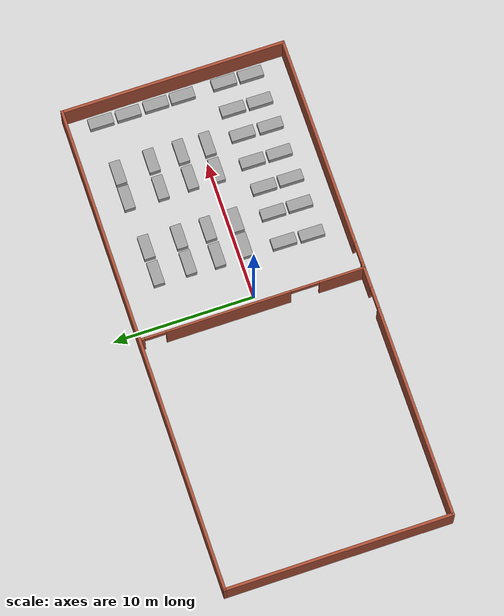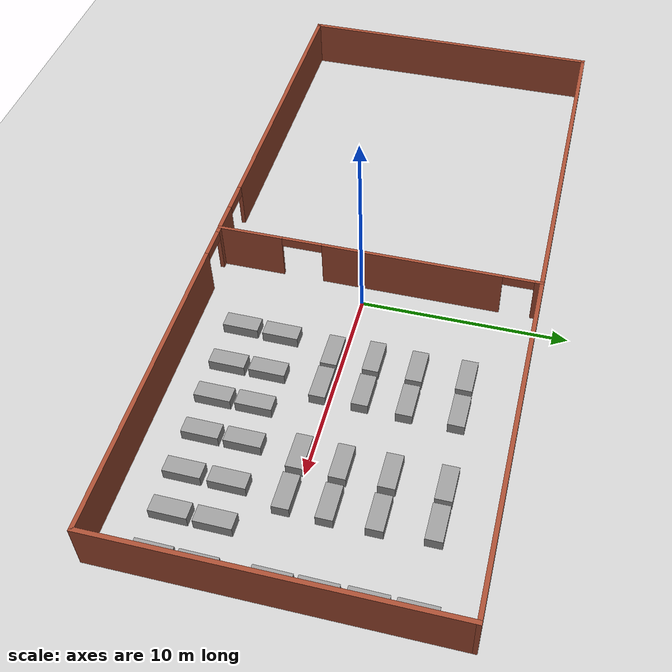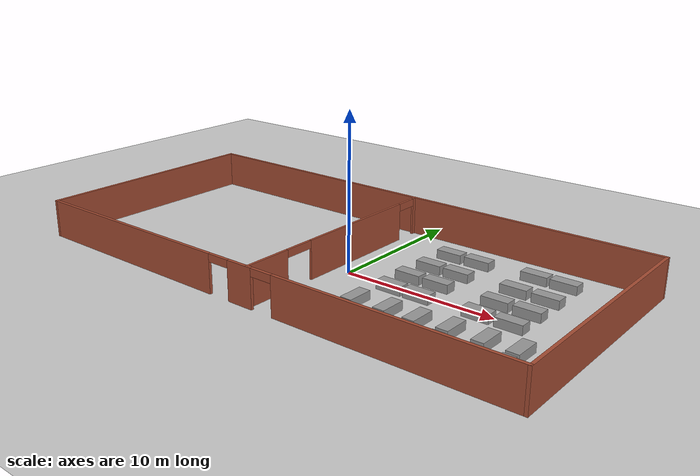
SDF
<sdf version="1.7">
 <world name="default">
  <model name="ground_plane">
   <static>1</static>
   <link name="link">
    <collision name="collision">
     <geometry><plane><normal>0 0 1</normal><size>100 100</size></plane></geometry>
     <surface><friction><ode><mu>100</mu><mu2>50</mu2></ode></friction></surface>
    </collision>
    <visual name="visual">
     <cast_shadows>0</cast_shadows>
     <geometry><plane><normal>0 0 1</normal><size>100 100</size></plane></geometry>
     <material>
      <script><uri>file://media/materials/scripts/gazebo.material</uri><name>Gazebo/Grey</name></script>
     </material>
    </visual>
   </link>
  </model>
  <model name="warehouse">
   <pose>-1.53718 0.469 0 0 -0 0</pose>
   <link name="Wall_2">
    <collision name="Wall_2_Collision">
     <geometry><box><size>35.0504 0.2 2.5</size></box></geometry>
     <pose>0 0 1.25 0 -0 0</pose>
    </collision>
    <visual name="Wall_2_Visual">
     <pose>0 0 1.25 0 -0 0</pose>
     <geometry><box><size>35.0504 0.2 2.5</size></box></geometry>
     <material>
      <script><uri>file://media/materials/scripts/gazebo.material</uri><name>Gazebo/Bricks</name></script>
      <ambient>1 1 1 1</ambient>
     </material>
     <meta><layer>0</layer></meta>
    </visual>
    <pose>1e-06 7.925 0 0 -0 0</pose>
   </link>
   <link name="Wall_3">
    <collision name="Wall_3_Collision">
     <geometry><box><size>16.0502 0.2 2.5</size></box></geometry>
     <pose>0 0 1.25 0 -0 0</pose>
    </collision>
    <visual name="Wall_3_Visual">
     <pose>0 0 1.25 0 -0 0</pose>
     <geometry><box><size>16.0502 0.2 2.5</size></box></geometry>
     <material>
      <script><uri>file://media/materials/scripts/gazebo.material</uri><name>Gazebo/Bricks</name></script>
      <ambient>1 1 1 1</ambient>
     </material>
     <meta><layer>0</layer></meta>
    </visual>
    <pose>17.425 0 0 0 -0 -1.5708</pose>
   </link>
   <link name="Wall_4">
    <pose>1e-06 -7.925 0 0 -0 3.14159</pose>
    <visual name="Wall_4_Visual_0">
     <pose>-9.91729 0 1.25 0 -0 0</pose>
     <geometry><box><size>15.215 0.2 2.5</size></box></geometry>
     <material>
      <script><uri>file://media/materials/scripts/gazebo.material</uri><name>Gazebo/Bricks</name></script>
      <ambient>1 1 1 1</ambient>
     </material>
     <meta><layer>0</layer></meta>
    </visual>
    <collision name="Wall_4_Collision_0">
     <geometry><box><size>15.215 0.2 2.5</size></box></geometry>
     <pose>-9.91729 0 1.25 0 -0 0</pose>
    </collision>
    <visual name="Wall_4_Visual_1">
     <pose>0.093025 0 1.25 0 -0 0</pose>
     <geometry><box><size>1.80562 0.2 2.5</size></box></geometry>
     <material>
      <script><uri>file://media/materials/scripts/gazebo.material</uri><name>Gazebo/Bricks</name></script>
      <ambient>1 1 1 1</ambient>
     </material>
     <meta><layer>0</layer></meta>
    </visual>
    <collision name="Wall_4_Collision_1">
     <geometry><box><size>1.80562 0.2 2.5</size></box></geometry>
     <pose>0.093025 0 1.25 0 -0 0</pose>
    </collision>
    <visual name="Wall_4_Visual_2">
     <pose>10.0103 0 1.25 0 -0 0</pose>
     <geometry><box><size>15.029 0.2 2.5</size></box></geometry>
     <material>
      <script><uri>file://media/materials/scripts/gazebo.material</uri><name>Gazebo/Bricks</name></script>
      <ambient>1 1 1 1</ambient>
     </material>
     <meta><layer>0</layer></meta>
    </visual>
    <collision name="Wall_4_Collision_2">
     <geometry><box><size>15.029 0.2 2.5</size></box></geometry>
     <pose>10.0103 0 1.25 0 -0 0</pose>
    </collision>
    <visual name="Wall_4_Visual_3">
     <pose>-1.55979 0 2.25 0 -0 0</pose>
     <geometry><box><size>1.5 0.2 0.5</size></box></geometry>
     <material>
      <script><uri>file://media/materials/scripts/gazebo.material</uri><name>Gazebo/Bricks</name></script>
      <ambient>1 1 1 1</ambient>
     </material>
     <meta><layer>0</layer></meta>
    </visual>
    <collision name="Wall_4_Collision_3">
     <geometry><box><size>1.5 0.2 0.5</size></box></geometry>
     <pose>-1.55979 0 2.25 0 -0 0</pose>
    </collision>
    <visual name="Wall_4_Visual_4">
     <pose>1.74584 0 2.25 0 -0 0</pose>
     <geometry><box><size>1.5 0.2 0.5</size></box></geometry>
     <material>
      <script><uri>file://media/materials/scripts/gazebo.material</uri><name>Gazebo/Bricks</name></script>
      <ambient>1 1 1 1</ambient>
     </material>
     <meta><layer>0</layer></meta>
    </visual>
    <collision name="Wall_4_Collision_4">
     <geometry><box><size>1.5 0.2 0.5</size></box></geometry>
     <pose>1.74584 0 2.25 0 -0 0</pose>
    </collision>
   </link>
   <link name="Wall_5">
    <collision name="Wall_5_Collision">
     <geometry><box><size>16.05 0.2 2.5</size></box></geometry>
     <pose>0 0 1.25 0 -0 0</pose>
    </collision>
    <visual name="Wall_5_Visual">
     <pose>0 0 1.25 0 -0 0</pose>
     <geometry><box><size>16.05 0.2 2.5</size></box></geometry>
     <material>
      <script><uri>file://media/materials/scripts/gazebo.material</uri><name>Gazebo/Bricks</name></script>
      <ambient>1 1 1 1</ambient>
     </material>
     <meta><layer>0</layer></meta>
    </visual>
    <pose>-17.425 0 0 0 -0 1.5708</pose>
   </link>
   <link name="Wall_8">
    <pose>0.464252 -0.022121 0 0 -0 -1.5708</pose>
    <visual name="Wall_8_Visual_0">
     <pose>-7.80252 0 1.25 0 -0 0</pose>
     <geometry><box><size>0.394954 0.15 2.5</size></box></geometry>
     <material>
      <script><uri>file://media/materials/scripts/gazebo.material</uri><name>Gazebo/Bricks</name></script>
      <ambient>1 1 1 1</ambient>
     </material>
     <meta><layer>0</layer></meta>
    </visual>
    <collision name="Wall_8_Collision_0">
     <geometry><box><size>0.394954 0.15 2.5</size></box></geometry>
     <pose>-7.80252 0 1.25 0 -0 0</pose>
    </collision>
    <visual name="Wall_8_Visual_1">
     <pose>-1.69513 0 1.25 0 -0 0</pose>
     <geometry><box><size>8.81983 0.15 2.5</size></box></geometry>
     <material>
      <script><uri>file://media/materials/scripts/gazebo.material</uri><name>Gazebo/Bricks</name></script>
      <ambient>1 1 1 1</ambient>
     </material>
     <meta><layer>0</layer></meta>
    </visual>
    <collision name="Wall_8_Collision_1">
     <geometry><box><size>8.81983 0.15 2.5</size></box></geometry>
     <pose>-1.69513 0 1.25 0 -0 0</pose>
    </collision>
    <visual name="Wall_8_Visual_2">
     <pose>6.35739 0 1.25 0 -0 0</pose>
     <geometry><box><size>3.28522 0.15 2.5</size></box></geometry>
     <material>
      <script><uri>file://media/materials/scripts/gazebo.material</uri><name>Gazebo/Bricks</name></script>
      <ambient>1 1 1 1</ambient>
     </material>
     <meta><layer>0</layer></meta>
    </visual>
    <collision name="Wall_8_Collision_2">
     <geometry><box><size>3.28522 0.15 2.5</size></box></geometry>
     <pose>6.35739 0 1.25 0 -0 0</pose>
    </collision>
    <visual name="Wall_8_Visual_3">
     <pose>-6.85505 0 2.25 0 -0 0</pose>
     <geometry><box><size>1.5 0.15 0.5</size></box></geometry>
     <material>
      <script><uri>file://media/materials/scripts/gazebo.material</uri><name>Gazebo/Bricks</name></script>
      <ambient>1 1 1 1</ambient>
     </material>
     <meta><layer>0</layer></meta>
    </visual>
    <collision name="Wall_8_Collision_3">
     <geometry><box><size>1.5 0.15 0.5</size></box></geometry>
     <pose>-6.85505 0 2.25 0 -0 0</pose>
    </collision>
    <visual name="Wall_8_Visual_4">
     <pose>3.71478 0 2.25 0 -0 0</pose>
     <geometry><box><size>2 0.15 0.5</size></box></geometry>
     <material>
      <script><uri>file://media/materials/scripts/gazebo.material</uri><name>Gazebo/Bricks</name></script>
      <ambient>1 1 1 1</ambient>
     </material>
     <meta><layer>0</layer></meta>
    </visual>
    <collision name="Wall_8_Collision_4">
     <geometry><box><size>2 0.15 0.5</size></box></geometry>
     <pose>3.71478 0 2.25 0 -0 0</pose>
    </collision>
   </link>
   <static>1</static>
  </model>
  <model name="unit_box_clone">
   <pose>15.1066 2.02055 0.285053 0 0 -0.009404</pose>
   <link name="link">
    <inertial>
     <mass>1</mass>
     <inertia>
      <ixx>0.166667</ixx>
      <ixy>0</ixy>
      <ixz>0</ixz>
      <iyy>0.166667</iyy>
      <iyz>0</iyz>
      <izz>0.166667</izz>
     </inertia>
    </inertial>
    <collision name="collision"><geometry><box><size>0.769556 1.70794 0.570107</size></box></geometry></collision>
    <visual name="visual">
     <geometry><box><size>0.769556 1.70794 0.570107</size></box></geometry>
     <material>
      <script><name>Gazebo/Grey</name><uri>file://media/materials/scripts/gazebo.material</uri></script>
     </material>
    </visual>
   </link>
  </model>
  <model name="unit_box_clone_0">
   <pose>15.0845 4.02392 0.285053 0 0 -0.009404</pose>
   <link name="link">
    <inertial>
     <mass>1</mass>
     <inertia>
      <ixx>0.166667</ixx>
      <ixy>0</ixy>
      <ixz>0</ixz>
      <iyy>0.166667</iyy>
      <iyz>0</iyz>
      <izz>0.166667</izz>
     </inertia>
    </inertial>
    <collision name="collision"><geometry><box><size>0.769556 1.70794 0.570107</size></box></geometry></collision>
    <visual name="visual">
     <geometry><box><size>0.769556 1.70794 0.570107</size></box></geometry>
     <material>
      <script><name>Gazebo/Grey</name><uri>file://media/materials/scripts/gazebo.material</uri></script>
     </material>
    </visual>
   </link>
  </model>
  <model name="unit_box_clone_1">
   <pose>15.0982 5.98316 0.285053 0 0 -0.009404</pose>
   <link name="link">
    <inertial>
     <mass>1</mass>
     <inertia>
      <ixx>0.166667</ixx>
      <ixy>0</ixy>
      <ixz>0</ixz>
      <iyy>0.166667</iyy>
      <iyz>0</iyz>
      <izz>0.166667</izz>
     </inertia>
    </inertial>
    <collision name="collision"><geometry><box><size>0.769556 1.70794 0.570107</size></box></geometry></collision>
    <visual name="visual">
     <geometry><box><size>0.769556 1.70794 0.570107</size></box></geometry>
     <material>
      <script><name>Gazebo/Grey</name><uri>file://media/materials/scripts/gazebo.material</uri></script>
     </material>
    </visual>
   </link>
  </model>
  <model name="unit_box_clone_2">
   <pose>15.1423 -2.91411 0.285053 0 0 -0.009404</pose>
   <link name="link">
    <inertial>
     <mass>1</mass>
     <inertia>
      <ixx>0.166667</ixx>
      <ixy>0</ixy>
      <ixz>0</ixz>
      <iyy>0.166667</iyy>
      <iyz>0</iyz>
      <izz>0.166667</izz>
     </inertia>
    </inertial>
    <collision name="collision"><geometry><box><size>0.769556 1.70794 0.570107</size></box></geometry></collision>
    <visual name="visual">
     <geometry><box><size>0.769556 1.70794 0.570107</size></box></geometry>
     <material>
      <script><name>Gazebo/Grey</name><uri>file://media/materials/scripts/gazebo.material</uri></script>
     </material>
    </visual>
   </link>
  </model>
  <model name="unit_box_clone_3">
   <pose>15.1121 -4.83538 0.285053 0 0 -0.009404</pose>
   <link name="link">
    <inertial>
     <mass>1</mass>
     <inertia>
      <ixx>0.166667</ixx>
      <ixy>0</ixy>
      <ixz>0</ixz>
      <iyy>0.166667</iyy>
      <iyz>0</iyz>
      <izz>0.166667</izz>
     </inertia>
    </inertial>
    <collision name="collision"><geometry><box><size>0.769556 1.70794 0.570107</size></box></geometry></collision>
    <visual name="visual">
     <geometry><box><size>0.769556 1.70794 0.570107</size></box></geometry>
     <material>
      <script><name>Gazebo/Grey</name><uri>file://media/materials/scripts/gazebo.material</uri></script>
     </material>
    </visual>
   </link>
  </model>
  <model name="unit_box_clone_4">
   <pose>13.0976 -2.86267 0.285053 0 0 -0.009404</pose>
   <link name="link">
    <inertial>
     <mass>1</mass>
     <inertia>
      <ixx>0.166667</ixx>
      <ixy>0</ixy>
      <ixz>0</ixz>
      <iyy>0.166667</iyy>
      <iyz>0</iyz>
      <izz>0.166667</izz>
     </inertia>
    </inertial>
    <collision name="collision"><geometry><box><size>0.769556 1.70794 0.570107</size></box></geometry></collision>
    <visual name="visual">
     <geometry><box><size>0.769556 1.70794 0.570107</size></box></geometry>
     <material>
      <script><name>Gazebo/Grey</name><uri>file://media/materials/scripts/gazebo.material</uri></script>
     </material>
    </visual>
   </link>
  </model>
  <model name="unit_box_clone_5">
   <pose>13.0739 -4.8115 0.285053 0 0 -0.009404</pose>
   <link name="link">
    <inertial>
     <mass>1</mass>
     <inertia>
      <ixx>0.166667</ixx>
      <ixy>0</ixy>
      <ixz>0</ixz>
      <iyy>0.166667</iyy>
      <iyz>0</iyz>
      <izz>0.166667</izz>
     </inertia>
    </inertial>
    <collision name="collision"><geometry><box><size>0.769556 1.70794 0.570107</size></box></geometry></collision>
    <visual name="visual">
     <geometry><box><size>0.769556 1.70794 0.570107</size></box></geometry>
     <material>
      <script><name>Gazebo/Grey</name><uri>file://media/materials/scripts/gazebo.material</uri></script>
     </material>
    </visual>
   </link>
  </model>
  <model name="unit_box_clone_6">
   <pose>11.1833 -2.92811 0.285053 0 0 -0.009404</pose>
   <link name="link">
    <inertial>
     <mass>1</mass>
     <inertia>
      <ixx>0.166667</ixx>
      <ixy>0</ixy>
      <ixz>0</ixz>
      <iyy>0.166667</iyy>
      <iyz>0</iyz>
      <izz>0.166667</izz>
     </inertia>
    </inertial>
    <collision name="collision"><geometry><box><size>0.769556 1.70794 0.570107</size></box></geometry></collision>
    <visual name="visual">
     <geometry><box><size>0.769556 1.70794 0.570107</size></box></geometry>
     <material>
      <script><name>Gazebo/Grey</name><uri>file://media/materials/scripts/gazebo.material</uri></script>
     </material>
    </visual>
   </link>
  </model>
  <model name="unit_box_clone_7">
   <pose>11.152 -4.94217 0.285053 0 0 -0.009404</pose>
   <link name="link">
    <inertial>
     <mass>1</mass>
     <inertia>
      <ixx>0.166667</ixx>
      <ixy>0</ixy>
      <ixz>0</ixz>
      <iyy>0.166667</iyy>
      <iyz>0</iyz>
      <izz>0.166667</izz>
     </inertia>
    </inertial>
    <collision name="collision"><geometry><box><size>0.769556 1.70794 0.570107</size></box></geometry></collision>
    <visual name="visual">
     <geometry><box><size>0.769556 1.70794 0.570107</size></box></geometry>
     <material>
      <script><name>Gazebo/Grey</name><uri>file://media/materials/scripts/gazebo.material</uri></script>
     </material>
    </visual>
   </link>
  </model>
  <model name="unit_box_clone_8">
   <pose>9.11454 -2.94436 0.285053 0 0 -0.009404</pose>
   <link name="link">
    <inertial>
     <mass>1</mass>
     <inertia>
      <ixx>0.166667</ixx>
      <ixy>0</ixy>
      <ixz>0</ixz>
      <iyy>0.166667</iyy>
      <iyz>0</iyz>
      <izz>0.166667</izz>
     </inertia>
    </inertial>
    <collision name="collision"><geometry><box><size>0.769556 1.70794 0.570107</size></box></geometry></collision>
    <visual name="visual">
     <geometry><box><size>0.769556 1.70794 0.570107</size></box></geometry>
     <material>
      <script><name>Gazebo/Grey</name><uri>file://media/materials/scripts/gazebo.material</uri></script>
     </material>
    </visual>
   </link>
  </model>
  <model name="unit_box_clone_9">
   <pose>9.09764 -4.88711 0.285053 0 0 -0.009404</pose>
   <link name="link">
    <inertial>
     <mass>1</mass>
     <inertia>
      <ixx>0.166667</ixx>
      <ixy>0</ixy>
      <ixz>0</ixz>
      <iyy>0.166667</iyy>
      <iyz>0</iyz>
      <izz>0.166667</izz>
     </inertia>
    </inertial>
    <collision name="collision"><geometry><box><size>0.769556 1.70794 0.570107</size></box></geometry></collision>
    <visual name="visual">
     <geometry><box><size>0.769556 1.70794 0.570107</size></box></geometry>
     <material>
      <script><name>Gazebo/Grey</name><uri>file://media/materials/scripts/gazebo.material</uri></script>
     </material>
    </visual>
   </link>
  </model>
  <model name="unit_box_clone_10">
   <pose>7.12497 -3.10123 0.285053 0 0 -0.009404</pose>
   <link name="link">
    <inertial>
     <mass>1</mass>
     <inertia>
      <ixx>0.166667</ixx>
      <ixy>0</ixy>
      <ixz>0</ixz>
      <iyy>0.166667</iyy>
      <iyz>0</iyz>
      <izz>0.166667</izz>
     </inertia>
    </inertial>
    <collision name="collision"><geometry><box><size>0.769556 1.70794 0.570107</size></box></geometry></collision>
    <visual name="visual">
     <geometry><box><size>0.769556 1.70794 0.570107</size></box></geometry>
     <material>
      <script><name>Gazebo/Grey</name><uri>file://media/materials/scripts/gazebo.material</uri></script>
     </material>
    </visual>
   </link>
  </model>
  <model name="unit_box_clone_11">
   <pose>7.11602 -5.02256 0.285053 0 0 -0.009404</pose>
   <link name="link">
    <inertial>
     <mass>1</mass>
     <inertia>
      <ixx>0.166667</ixx>
      <ixy>0</ixy>
      <ixz>0</ixz>
      <iyy>0.166667</iyy>
      <iyz>0</iyz>
      <izz>0.166667</izz>
     </inertia>
    </inertial>
    <collision name="collision"><geometry><box><size>0.769556 1.70794 0.570107</size></box></geometry></collision>
    <visual name="visual">
     <geometry><box><size>0.769556 1.70794 0.570107</size></box></geometry>
     <material>
      <script><name>Gazebo/Grey</name><uri>file://media/materials/scripts/gazebo.material</uri></script>
     </material>
    </visual>
   </link>
  </model>
  <model name="unit_box_clone_12">
   <pose>5.18945 -3.09346 0.285053 0 0 -0.009404</pose>
   <link name="link">
    <inertial>
     <mass>1</mass>
     <inertia>
      <ixx>0.166667</ixx>
      <ixy>0</ixy>
      <ixz>0</ixz>
      <iyy>0.166667</iyy>
      <iyz>0</iyz>
      <izz>0.166667</izz>
     </inertia>
    </inertial>
    <collision name="collision"><geometry><box><size>0.769556 1.70794 0.570107</size></box></geometry></collision>
    <visual name="visual">
     <geometry><box><size>0.769556 1.70794 0.570107</size></box></geometry>
     <material>
      <script><name>Gazebo/Grey</name><uri>file://media/materials/scripts/gazebo.material</uri></script>
     </material>
    </visual>
   </link>
  </model>
  <model name="unit_box_clone_13">
   <pose>5.17833 -5.01713 0.285053 0 0 -0.009404</pose>
   <link name="link">
    <inertial>
     <mass>1</mass>
     <inertia>
      <ixx>0.166667</ixx>
      <ixy>0</ixy>
      <ixz>0</ixz>
      <iyy>0.166667</iyy>
      <iyz>0</iyz>
      <izz>0.166667</izz>
     </inertia>
    </inertial>
    <collision name="collision"><geometry><box><size>0.769556 1.70794 0.570107</size></box></geometry></collision>
    <visual name="visual">
     <geometry><box><size>0.769556 1.70794 0.570107</size></box></geometry>
     <material>
      <script><name>Gazebo/Grey</name><uri>file://media/materials/scripts/gazebo.material</uri></script>
     </material>
    </visual>
   </link>
  </model>
  <model name="unit_box_clone_14">
   <pose>2.98849 -3.13568 0.285053 0 0 -0.009404</pose>
   <link name="link">
    <inertial>
     <mass>1</mass>
     <inertia>
      <ixx>0.166667</ixx>
      <ixy>0</ixy>
      <ixz>0</ixz>
      <iyy>0.166667</iyy>
      <iyz>0</iyz>
      <izz>0.166667</izz>
     </inertia>
    </inertial>
    <collision name="collision"><geometry><box><size>0.769556 1.70794 0.570107</size></box></geometry></collision>
    <visual name="visual">
     <geometry><box><size>0.769556 1.70794 0.570107</size></box></geometry>
     <material>
      <script><name>Gazebo/Grey</name><uri>file://media/materials/scripts/gazebo.material</uri></script>
     </material>
    </visual>
   </link>
  </model>
  <model name="unit_box_clone_15">
   <pose>2.9243 -5.10619 0.285053 0 0 -0.009404</pose>
   <link name="link">
    <inertial>
     <mass>1</mass>
     <inertia>
      <ixx>0.166667</ixx>
      <ixy>0</ixy>
      <ixz>0</ixz>
      <iyy>0.166667</iyy>
      <iyz>0</iyz>
      <izz>0.166667</izz>
     </inertia>
    </inertial>
    <collision name="collision"><geometry><box><size>0.769556 1.70794 0.570107</size></box></geometry></collision>
    <visual name="visual">
     <geometry><box><size>0.769556 1.70794 0.570107</size></box></geometry>
     <material>
      <script><name>Gazebo/Grey</name><uri>file://media/materials/scripts/gazebo.material</uri></script>
     </material>
    </visual>
   </link>
  </model>
  <model name="unit_box_clone_30_clone_22">
   <pose>3.57181 -0.491444 0.285053 0 -0 1.56704</pose>
   <link name="link">
    <inertial>
     <mass>1</mass>
     <inertia>
      <ixx>0.166667</ixx>
      <ixy>0</ixy>
      <ixz>0</ixz>
      <iyy>0.166667</iyy>
      <iyz>0</iyz>
      <izz>0.166667</izz>
     </inertia>
    </inertial>
    <collision name="collision"><geometry><box><size>0.769556 1.70794 0.570107</size></box></geometry></collision>
    <visual name="visual">
     <geometry><box><size>0.769556 1.70794 0.570107</size></box></geometry>
     <material>
      <script><name>Gazebo/Grey</name><uri>file://media/materials/scripts/gazebo.material</uri></script>
     </material>
    </visual>
   </link>
  </model>
  <model name="unit_box_clone_30_clone_23">
   <pose>5.45254 -0.500813 0.285053 0 -0 1.56704</pose>
   <link name="link">
    <inertial>
     <mass>1</mass>
     <inertia>
      <ixx>0.166667</ixx>
      <ixy>0</ixy>
      <ixz>0</ixz>
      <iyy>0.166667</iyy>
      <iyz>0</iyz>
      <izz>0.166667</izz>
     </inertia>
    </inertial>
    <collision name="collision"><geometry><box><size>0.769556 1.70794 0.570107</size></box></geometry></collision>
    <visual name="visual">
     <geometry><box><size>0.769556 1.70794 0.570107</size></box></geometry>
     <material>
      <script><name>Gazebo/Grey</name><uri>file://media/materials/scripts/gazebo.material</uri></script>
     </material>
    </visual>
   </link>
  </model>
  <model name="unit_box_clone_30_clone_24">
   <pose>9.24656 -0.427335 0.285053 0 -0 1.56704</pose>
   <link name="link">
    <inertial>
     <mass>1</mass>
     <inertia>
      <ixx>0.166667</ixx>
      <ixy>0</ixy>
      <ixz>0</ixz>
      <iyy>0.166667</iyy>
      <iyz>0</iyz>
      <izz>0.166667</izz>
     </inertia>
    </inertial>
    <collision name="collision"><geometry><box><size>0.769556 1.70794 0.570107</size></box></geometry></collision>
    <visual name="visual">
     <geometry><box><size>0.769556 1.70794 0.570107</size></box></geometry>
     <material>
      <script><name>Gazebo/Grey</name><uri>file://media/materials/scripts/gazebo.material</uri></script>
     </material>
    </visual>
   </link>
  </model>
  <model name="unit_box_clone_30_clone_25">
   <pose>11.2383 -0.421975 0.285053 0 -0 1.56704</pose>
   <link name="link">
    <inertial>
     <mass>1</mass>
     <inertia>
      <ixx>0.166667</ixx>
      <ixy>0</ixy>
      <ixz>0</ixz>
      <iyy>0.166667</iyy>
      <iyz>0</iyz>
      <izz>0.166667</izz>
     </inertia>
    </inertial>
    <collision name="collision"><geometry><box><size>0.769556 1.70794 0.570107</size></box></geometry></collision>
    <visual name="visual">
     <geometry><box><size>0.769556 1.70794 0.570107</size></box></geometry>
     <material>
      <script><name>Gazebo/Grey</name><uri>file://media/materials/scripts/gazebo.material</uri></script>
     </material>
    </visual>
   </link>
  </model>
  <model name="unit_box_clone_30_clone_26">
   <pose>3.49711 1.46209 0.285053 0 -0 1.56704</pose>
   <link name="link">
    <inertial>
     <mass>1</mass>
     <inertia>
      <ixx>0.166667</ixx>
      <ixy>0</ixy>
      <ixz>0</ixz>
      <iyy>0.166667</iyy>
      <iyz>0</iyz>
      <izz>0.166667</izz>
     </inertia>
    </inertial>
    <collision name="collision"><geometry><box><size>0.769556 1.70794 0.570107</size></box></geometry></collision>
    <visual name="visual">
     <geometry><box><size>0.769556 1.70794 0.570107</size></box></geometry>
     <material>
      <script><name>Gazebo/Grey</name><uri>file://media/materials/scripts/gazebo.material</uri></script>
     </material>
    </visual>
   </link>
  </model>
  <model name="unit_box_clone_30_clone_27">
   <pose>5.45732 1.46173 0.285053 0 -0 1.56704</pose>
   <link name="link">
    <inertial>
     <mass>1</mass>
     <inertia>
      <ixx>0.166667</ixx>
      <ixy>0</ixy>
      <ixz>0</ixz>
      <iyy>0.166667</iyy>
      <iyz>0</iyz>
      <izz>0.166667</izz>
     </inertia>
    </inertial>
    <collision name="collision"><geometry><box><size>0.769556 1.70794 0.570107</size></box></geometry></collision>
    <visual name="visual">
     <geometry><box><size>0.769556 1.70794 0.570107</size></box></geometry>
     <material>
      <script><name>Gazebo/Grey</name><uri>file://media/materials/scripts/gazebo.material</uri></script>
     </material>
    </visual>
   </link>
  </model>
  <model name="unit_box_clone_30_clone_28">
   <pose>9.31528 1.47009 0.285053 0 -0 1.56704</pose>
   <link name="link">
    <inertial>
     <mass>1</mass>
     <inertia>
      <ixx>0.166667</ixx>
      <ixy>0</ixy>
      <ixz>0</ixz>
      <iyy>0.166667</iyy>
      <iyz>0</iyz>
      <izz>0.166667</izz>
     </inertia>
    </inertial>
    <collision name="collision"><geometry><box><size>0.769556 1.70794 0.570107</size></box></geometry></collision>
    <visual name="visual">
     <geometry><box><size>0.769556 1.70794 0.570107</size></box></geometry>
     <material>
      <script><name>Gazebo/Grey</name><uri>file://media/materials/scripts/gazebo.material</uri></script>
     </material>
    </visual>
   </link>
  </model>
  <model name="unit_box_clone_30_clone_29">
   <pose>11.3001 1.46621 0.285053 0 -0 1.56704</pose>
   <link name="link">
    <inertial>
     <mass>1</mass>
     <inertia>
      <ixx>0.166667</ixx>
      <ixy>0</ixy>
      <ixz>0</ixz>
      <iyy>0.166667</iyy>
      <iyz>0</iyz>
      <izz>0.166667</izz>
     </inertia>
    </inertial>
    <collision name="collision"><geometry><box><size>0.769556 1.70794 0.570107</size></box></geometry></collision>
    <visual name="visual">
     <geometry><box><size>0.769556 1.70794 0.570107</size></box></geometry>
     <material>
      <script><name>Gazebo/Grey</name><uri>file://media/materials/scripts/gazebo.material</uri></script>
     </material>
    </visual>
   </link>
  </model>
  <model name="unit_box_clone_30_clone_30">
   <pose>3.59875 3.49995 0.285053 0 -0 1.56704</pose>
   <link name="link">
    <inertial>
     <mass>1</mass>
     <inertia>
      <ixx>0.166667</ixx>
      <ixy>0</ixy>
      <ixz>0</ixz>
      <iyy>0.166667</iyy>
      <iyz>0</iyz>
      <izz>0.166667</izz>
     </inertia>
    </inertial>
    <collision name="collision"><geometry><box><size>0.769556 1.70794 0.570107</size></box></geometry></collision>
    <visual name="visual">
     <geometry><box><size>0.769556 1.70794 0.570107</size></box></geometry>
     <material>
      <script><name>Gazebo/Grey</name><uri>file://media/materials/scripts/gazebo.material</uri></script>
     </material>
    </visual>
   </link>
  </model>
  <model name="unit_box_clone_30_clone_31">
   <pose>5.54022 3.4966 0.285053 0 -0 1.56704</pose>
   <link name="link">
    <inertial>
     <mass>1</mass>
     <inertia>
      <ixx>0.166667</ixx>
      <ixy>0</ixy>
      <ixz>0</ixz>
      <iyy>0.166667</iyy>
      <iyz>0</iyz>
      <izz>0.166667</izz>
     </inertia>
    </inertial>
    <collision name="collision"><geometry><box><size>0.769556 1.70794 0.570107</size></box></geometry></collision>
    <visual name="visual">
     <geometry><box><size>0.769556 1.70794 0.570107</size></box></geometry>
     <material>
      <script><name>Gazebo/Grey</name><uri>file://media/materials/scripts/gazebo.material</uri></script>
     </material>
    </visual>
   </link>
  </model>
  <model name="unit_box_clone_30_clone_32">
   <pose>9.28547 3.60159 0.285053 0 -0 1.56704</pose>
   <link name="link">
    <inertial>
     <mass>1</mass>
     <inertia>
      <ixx>0.166667</ixx>
      <ixy>0</ixy>
      <ixz>0</ixz>
      <iyy>0.166667</iyy>
      <iyz>0</iyz>
      <izz>0.166667</izz>
     </inertia>
    </inertial>
    <collision name="collision"><geometry><box><size>0.769556 1.70794 0.570107</size></box></geometry></collision>
    <visual name="visual">
     <geometry><box><size>0.769556 1.70794 0.570107</size></box></geometry>
     <material>
      <script><name>Gazebo/Grey</name><uri>file://media/materials/scripts/gazebo.material</uri></script>
     </material>
    </visual>
   </link>
  </model>
  <model name="unit_box_clone_30_clone_33">
   <pose>11.3037 3.57737 0.285053 0 -0 1.56704</pose>
   <link name="link">
    <inertial>
     <mass>1</mass>
     <inertia>
      <ixx>0.166667</ixx>
      <ixy>0</ixy>
      <ixz>0</ixz>
      <iyy>0.166667</iyy>
      <iyz>0</iyz>
      <izz>0.166667</izz>
     </inertia>
    </inertial>
    <collision name="collision"><geometry><box><size>0.769556 1.70794 0.570107</size></box></geometry></collision>
    <visual name="visual">
     <geometry><box><size>0.769556 1.70794 0.570107</size></box></geometry>
     <material>
      <script><name>Gazebo/Grey</name><uri>file://media/materials/scripts/gazebo.material</uri></script>
     </material>
    </visual>
   </link>
  </model>
  <model name="unit_box_clone_30_clone_34">
   <pose>9.30867 6.0221 0.285053 0 -0 1.56704</pose>
   <link name="link">
    <inertial>
     <mass>1</mass>
     <inertia>
      <ixx>0.166667</ixx>
      <ixy>0</ixy>
      <ixz>0</ixz>
      <iyy>0.166667</iyy>
      <iyz>0</iyz>
      <izz>0.166667</izz>
     </inertia>
    </inertial>
    <collision name="collision"><geometry><box><size>0.769556 1.70794 0.570107</size></box></geometry></collision>
    <visual name="visual">
     <geometry><box><size>0.769556 1.70794 0.570107</size></box></geometry>
     <material>
      <script><name>Gazebo/Grey</name><uri>file://media/materials/scripts/gazebo.material</uri></script>
     </material>
    </visual>
   </link>
  </model>
  <model name="unit_box_clone_30_clone_35">
   <pose>11.2012 6.00767 0.285053 0 -0 1.56704</pose>
   <link name="link">
    <inertial>
     <mass>1</mass>
     <inertia>
      <ixx>0.166667</ixx>
      <ixy>0</ixy>
      <ixz>0</ixz>
      <iyy>0.166667</iyy>
      <iyz>0</iyz>
      <izz>0.166667</izz>
     </inertia>
    </inertial>
    <collision name="collision"><geometry><box><size>0.769556 1.70794 0.570107</size></box></geometry></collision>
    <visual name="visual">
     <geometry><box><size>0.769556 1.70794 0.570107</size></box></geometry>
     <material>
      <script><name>Gazebo/Grey</name><uri>file://media/materials/scripts/gazebo.material</uri></script>
     </material>
    </visual>
   </link>
  </model>
  <model name="unit_box_clone_30_clone_36">
   <pose>3.59143 5.80936 0.285053 0 -0 1.56704</pose>
   <link name="link">
    <inertial>
     <mass>1</mass>
     <inertia>
      <ixx>0.166667</ixx>
      <ixy>0</ixy>
      <ixz>0</ixz>
      <iyy>0.166667</iyy>
      <iyz>0</iyz>
      <izz>0.166667</izz>
     </inertia>
    </inertial>
    <collision name="collision"><geometry><box><size>0.769556 1.70794 0.570107</size></box></geometry></collision>
    <visual name="visual">
     <geometry><box><size>0.769556 1.70794 0.570107</size></box></geometry>
     <material>
      <script><name>Gazebo/Grey</name><uri>file://media/materials/scripts/gazebo.material</uri></script>
     </material>
    </visual>
   </link>
  </model>
  <model name="unit_box_clone_30_clone_37">
   <pose>5.55445 5.83588 0.285053 0 -0 1.56704</pose>
   <link name="link">
    <inertial>
     <mass>1</mass>
     <inertia>
      <ixx>0.166667</ixx>
      <ixy>0</ixy>
      <ixz>0</ixz>
      <iyy>0.166667</iyy>
      <iyz>0</iyz>
      <izz>0.166667</izz>
     </inertia>
    </inertial>
    <collision name="collision"><geometry><box><size>0.769556 1.70794 0.570107</size></box></geometry></collision>
    <visual name="visual">
     <geometry><box><size>0.769556 1.70794 0.570107</size></box></geometry>
     <material>
      <script><name>Gazebo/Grey</name><uri>file://media/materials/scripts/gazebo.material</uri></script>
     </material>
    </visual>
   </link>
  </model>
  <model name="unit_box_clone_clone">
   <pose>15.1096 0.117537 0.285053 0 0 -0.009404</pose>
   <link name="link">
    <inertial>
     <mass>1</mass>
     <inertia>
      <ixx>0.166667</ixx>
      <ixy>0</ixy>
      <ixz>0</ixz>
      <iyy>0.166667</iyy>
      <iyz>0</iyz>
      <izz>0.166667</izz>
     </inertia>
    </inertial>
    <collision name="collision"><geometry><box><size>0.769556 1.70794 0.570107</size></box></geometry></collision>
    <visual name="visual">
     <geometry><box><size>0.769556 1.70794 0.570107</size></box></geometry>
     <material>
      <script><name>Gazebo/Grey</name><uri>file://media/materials/scripts/gazebo.material</uri></script>
     </material>
    </visual>
   </link>
  </model>
 </world>
</sdf>
